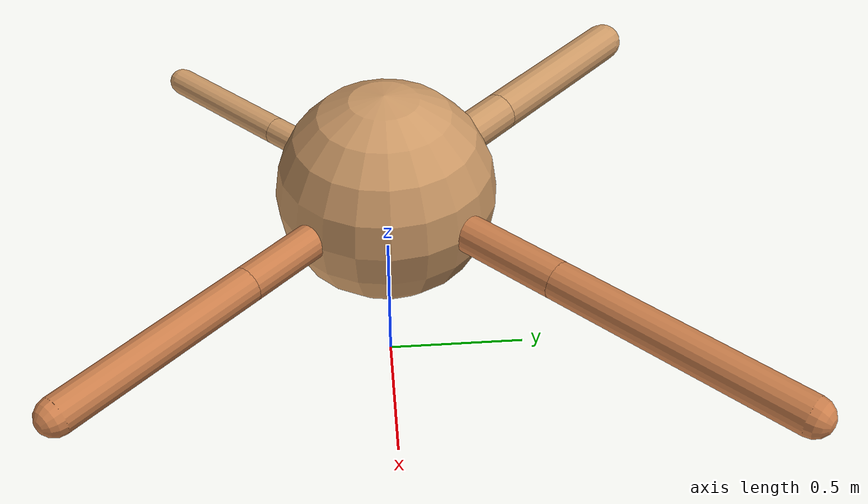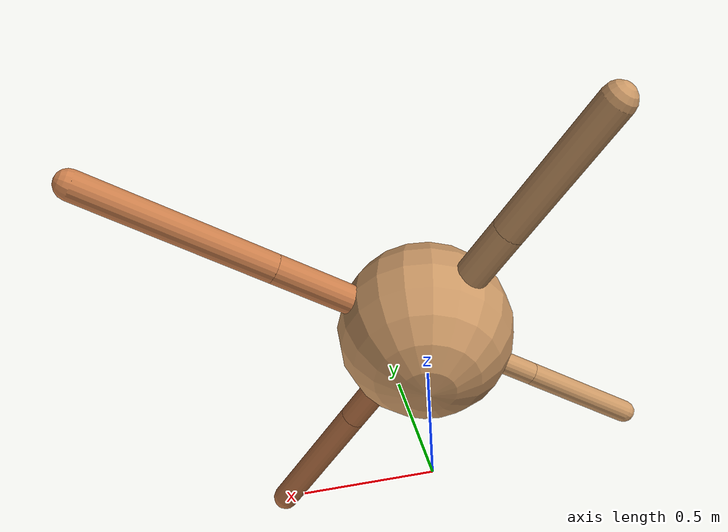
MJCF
<?xml version="1.0" ?>
<mujoco model="ant">

	<compiler angle="degree" coordinate="local" inertiafromgeom="true"/>

	<option integrator="RK4" timestep="0.01"/>

	<custom>

		<numeric data="0.0 0.0 0.55 1.0 0.0 0.0 0.0 0.0 1.0 0.0 -1.0 0.0 -1.0 0.0 1.0" name="init_qpos"/>

	</custom>

	<default>

		<joint armature="1" damping="1" limited="true"/>

		<geom conaffinity="0" condim="3" density="5.0" friction="1.5 0.1 0.1" margin="0.01" rgba="0.8 0.6 0.4 1"/>

	</default>

	<worldbody>

		<body name="torso" pos="0 0 0.75">

			<geom name="torso_geom" pos="0 0 0" size="0.3733783196724788" type="sphere"/>

			<!--joint armature="0" damping="0" limited="false" margin="0.01" name="root" pos="0 0 0" type="free"/-->

			<body name="front_left_leg" pos="0 0 0">

				<geom fromto="0 0 0 0.2 0.2 0" name="aux_1_geom" size="0.06269201008730427" type="capsule" rgba=".8 .5 .3 1"/>

				<body name="aux_1" pos="0.2 0.2 0">

					<joint axis="0 0 1" name="hip_1" pos="0.0 0.0 0.0" range="-40 40" type="hinge"/>

					<geom fromto="0 0 0 0.2999371442582389 0.2999371442582389 0" name="left_leg_geom" size="0.06269201008730427" type="capsule" rgba=".8 .5 .3 1"/>

					<body pos="0.2999371442582389 0.2999371442582389 0" name="front_left_foot">

						<joint axis="-1 1 0" name="ankle_1" pos="0.0 0.0 0.0" range="30 100" type="hinge"/>

						<geom fromto="0 0 0 0.5998742885164778 0.5998742885164778 0" name="left_ankle_geom" size="0.06269201008730427" type="capsule" rgba=".8 .5 .3 1"/>

					</body>

				</body>

			</body>

			<body name="front_right_leg" pos="0 0 0">

				<geom fromto="0 0 0 -0.2 0.2 0" name="aux_2_geom" size="0.07207015577167203" type="capsule"/>

				<body name="aux_2" pos="-0.2 0.2 0">

					<joint axis="0 0 1" name="hip_2" pos="0.0 0.0 0.0" range="-40 40" type="hinge"/>

					<geom fromto="0 0 0 -0.23878346055074118 0.23878346055074118 0" name="right_leg_geom" size="0.07207015577167203" type="capsule"/>

					<body pos="-0.23878346055074118 0.23878346055074118 0" name="front_right_foot">

						<joint axis="1 1 0" name="ankle_2" pos="0.0 0.0 0.0" range="-100 -30" type="hinge"/>

						<geom fromto="0 0 0 -0.47756692110148236 0.47756692110148236 0" name="right_ankle_geom" size="0.07207015577167203" type="capsule"/>

					</body>

				</body>

			</body>

			<body name="left_back_leg" pos="0 0 0">

				<geom fromto="0 0 0 -0.2 -0.2 0" name="aux_3_geom" size="0.048539762223171294" type="capsule"/>

				<body name="aux_3" pos="-0.2 -0.2 0">

					<joint axis="0 0 1" name="hip_3" pos="0.0 0.0 0.0" range="-40 40" type="hinge"/>

					<geom fromto="0 0 0 -0.18146728107215065 -0.18146728107215065 0" name="back_leg_geom" size="0.048539762223171294" type="capsule"/>

					<body pos="-0.18146728107215065 -0.18146728107215065 0" name="left_back_foot">

						<joint axis="-1 1 0" name="ankle_3" pos="0.0 0.0 0.0" range="-100 -30" type="hinge"/>

						<geom fromto="0 0 0 -0.3629345621443013 -0.3629345621443013 0" name="third_ankle_geom" size="0.048539762223171294" type="capsule"/>

					</body>

				</body>

			</body>

			<body name="right_back_leg" pos="0 0 0">

				<geom fromto="0 0 0 0.2 -0.2 0" name="aux_4_geom" size="0.05973366232531671" type="capsule" rgba=".8 .5 .3 1"/>

				<body name="aux_4" pos="0.2 -0.2 0">

					<joint axis="0 0 1" name="hip_4" pos="0.0 0.0 0.0" range="-40 40" type="hinge"/>

					<geom fromto="0 0 0 0.24718115240791622 -0.24718115240791622 0" name="rightback_leg_geom" size="0.05973366232531671" type="capsule" rgba=".8 .5 .3 1"/>

					<body pos="0.24718115240791622 -0.24718115240791622 0" name="right_back_foot">

						<joint axis="1 1 0" name="ankle_4" pos="0.0 0.0 0.0" range="30 100" type="hinge"/>

						<geom fromto="0 0 0 0.49436230481583243 -0.49436230481583243 0" name="fourth_ankle_geom" size="0.05973366232531671" type="capsule" rgba=".8 .5 .3 1"/>

					</body>

				</body>

			</body>

		</body>

	</worldbody>

	<actuator>

		<motor ctrllimited="true" ctrlrange="-1.0 1.0" joint="hip_4" gear="150"/>

		<motor ctrllimited="true" ctrlrange="-1.0 1.0" joint="ankle_4" gear="150"/>

		<motor ctrllimited="true" ctrlrange="-1.0 1.0" joint="hip_1" gear="150"/>

		<motor ctrllimited="true" ctrlrange="-1.0 1.0" joint="ankle_1" gear="150"/>

		<motor ctrllimited="true" ctrlrange="-1.0 1.0" joint="hip_2" gear="150"/>

		<motor ctrllimited="true" ctrlrange="-1.0 1.0" joint="ankle_2" gear="150"/>

		<motor ctrllimited="true" ctrlrange="-1.0 1.0" joint="hip_3" gear="150"/>

		<motor ctrllimited="true" ctrlrange="-1.0 1.0" joint="ankle_3" gear="150"/>

	</actuator>

</mujoco>
